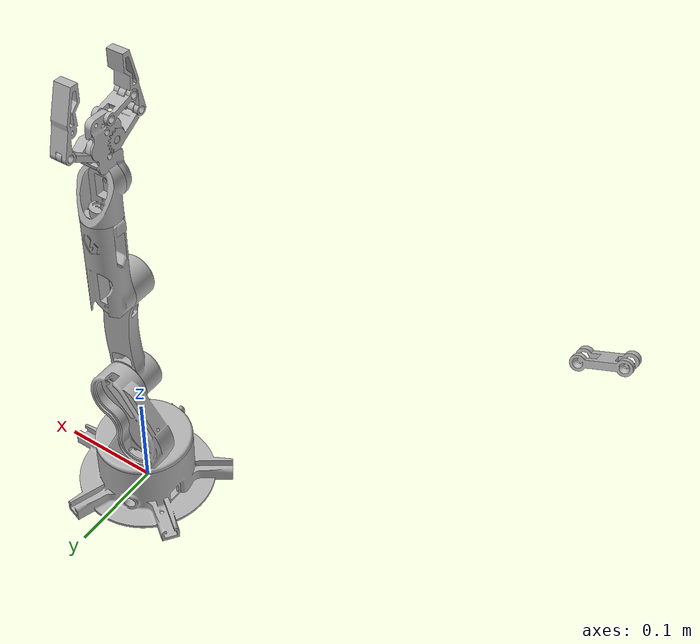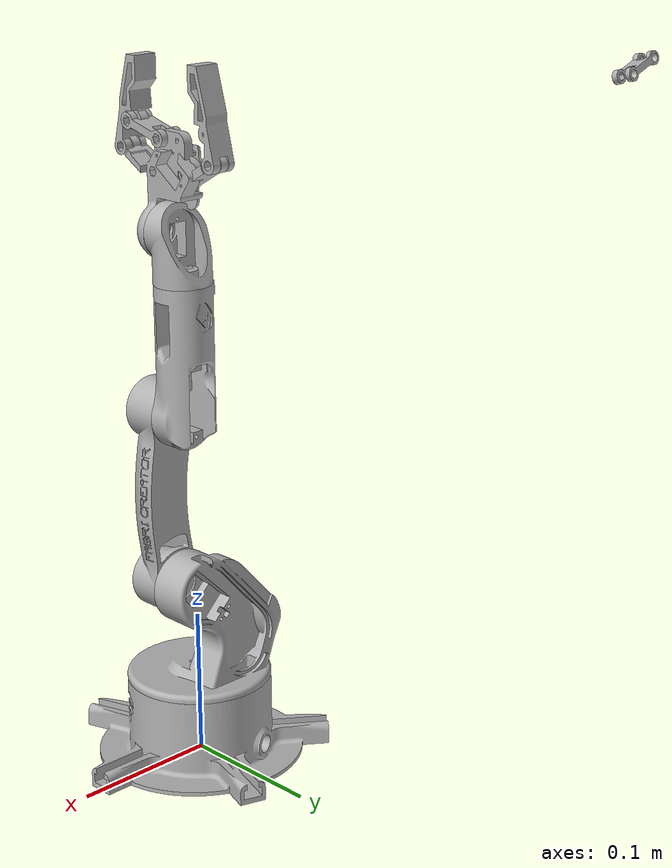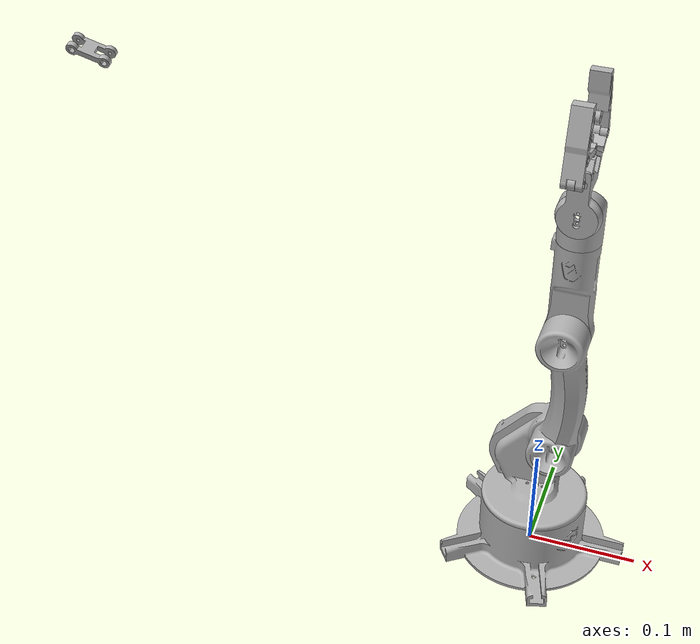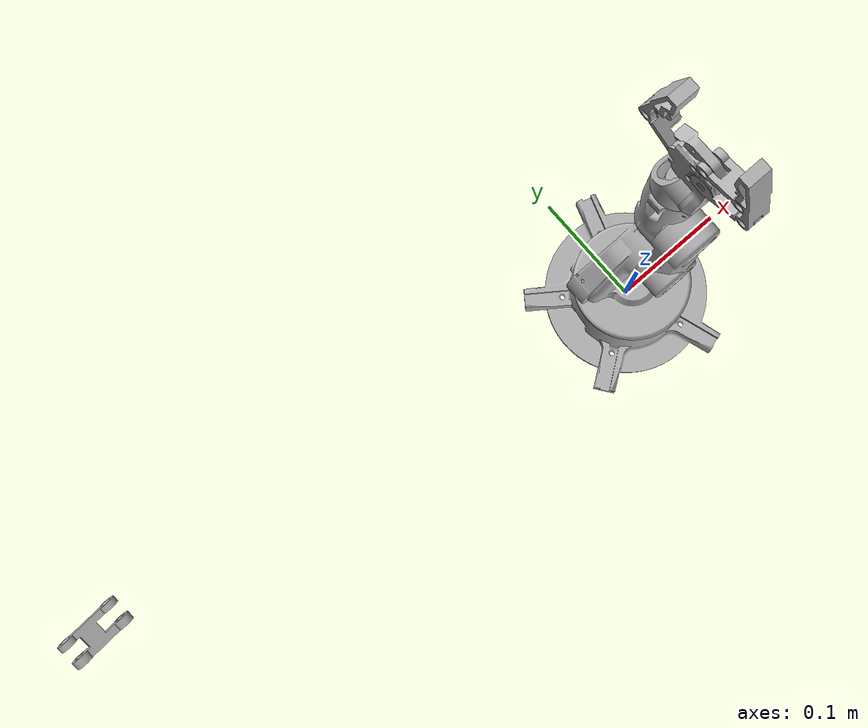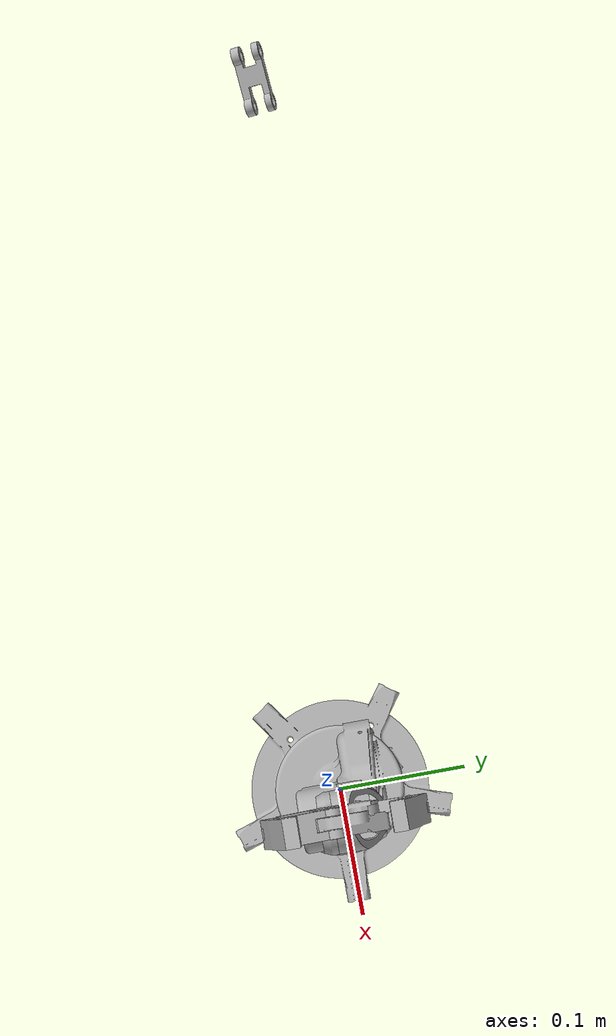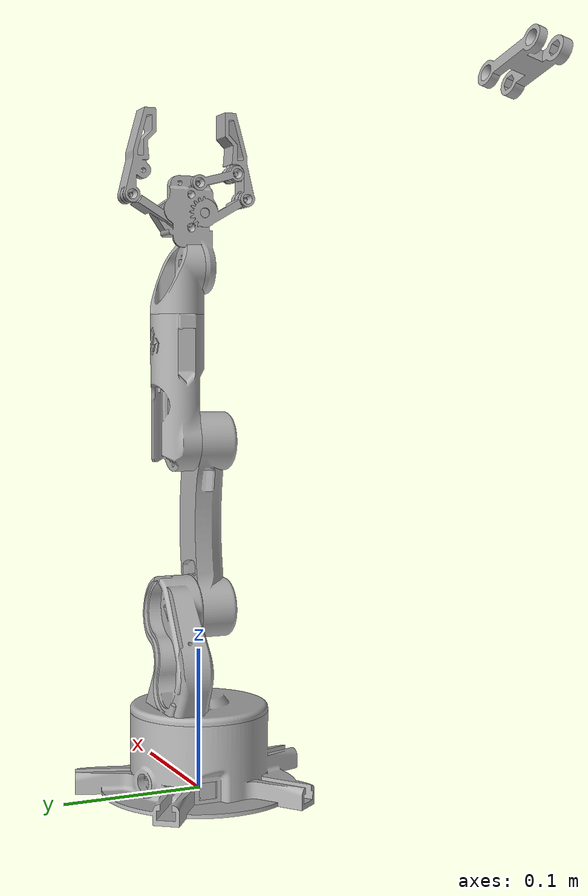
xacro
<?xml version="1.0" encoding="UTF-8"?>
<robot name="cobot" xmlns:xacro="http://www.ros.org/wiki/xacro">

  <xacro:include filename="$(find cobot_description)/urdf/cobot.description.xacro" />
  <xacro:include filename="$(find cobot_description)/urdf/cobot.ros2_control.xacro" />

  <xacro:arg name="simulation" default="false" />
  <xacro:arg name="use_real_hardware" default="false" />

  <xacro:cobot_description simulation="$(arg simulation)" />
  <xacro:cobot_ros2_control use_real_hardware="$(arg use_real_hardware)" />

</robot>

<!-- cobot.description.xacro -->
<robot xmlns:xacro="http://www.ros.org/wiki/xacro">

  <xacro:include filename="$(find cobot_description)/urdf/utils/colors.xacro" />
  <xacro:include filename="$(find cobot_description)/urdf/utils/inertials.xacro" />

  <xacro:macro name="cobot_description" params="simulation:=false">
    <link name="world"/>
    <joint name="world_to_base_link" type="fixed">
      <parent link="world"/>
      <child link="base_link"/>
    </joint>

    <link name="base_link" />
    <joint name="base_link_to_base_bottom" type="fixed">
      <parent link="base_link"/>
      <child link="base_bottom"/>
    </joint>

    <!-- base_bottom -->
    <link name="base_bottom">
      <visual>
        <origin xyz="0 0 0" rpy="0 0 0" />
        <geometry>
          <mesh filename="package://cobot_description/meshes/base_link.stl" scale="0.001 0.001 0.001" />
        </geometry>
        <material name="silver" />
      </visual>

      <inertial>
        <origin xyz="0.0010569805350138673 0.0007297344522584362 0.01829217339489528" rpy="0 0 0" />
        <mass
          value="0.9757252027596308" />
        <inertia
          ixx="0.001614"
          iyy="0.0017"
          izz="0.002741"
          ixy="-1.4e-05"
          iyz="-7e-06"
          ixz="-0.0" />
      </inertial>
    </link>

    <!-- link1 -->
    <link name="link1">
      <visual>
        <origin xyz="0 0 0" rpy="0 0 0" />
        <geometry>
          <mesh filename="package://cobot_description/meshes/link1.stl" scale="0.001 0.001 0.001" />
        </geometry>
        <material name="silver" />
      </visual>

      <inertial>
        <origin xyz="-0.003818008823720768 0.008441513827613 0.03204494242786362" rpy="0 0 0" />
        <mass value="0.85" />
        <inertia
          ixx="0.000968"
          iyy="0.001205"
          izz="0.000724"
          ixy="3.4e-05"
          iyz="-0.000103"
          ixz="-7.7e-05" />
      </inertial>
    </link>

    <!-- link2 -->
    <link name="link2">
      <visual>
        <origin xyz="0 0 0" rpy="0 0 0" />
        <geometry>
          <mesh filename="package://cobot_description/meshes/link2.stl" scale="0.001 0.001 0.001" />
        </geometry>
        <material name="silver" />
      </visual>

      <inertial>
        <origin xyz="0.06020229512696279 -0.002214238815772403 0.011894670876730499" rpy="0 0 0" />
        <mass value="0.65" />
        <inertia
          ixx="0.000127"
          iyy="0.001921"
          izz="0.001969"
          ixy="-2e-06"
          iyz="2e-06"
          ixz="1e-06" />
      </inertial>
    </link>

    <!-- link3 -->
    <link name="link3">
      <visual>
        <origin xyz="0 0 0" rpy="0 0 0" />
        <geometry>
          <mesh filename="package://cobot_description/meshes/link3.stl" scale="0.001 0.001 0.001" />
        </geometry>
        <material name="silver" />
      </visual>

      <inertial>
        <origin xyz="0.0409322245782118 -0.0006937756215695916 -0.008652145666434768" rpy="0 0 0" />
        <mass value="0.4" />
        <inertia
          ixx="8.7e-05"
          iyy="0.000447"
          izz="0.000468"
          ixy="-7e-06"
          iyz="-2e-06"
          ixz="-5e-06" />
      </inertial>
    </link>

    <!-- link4 -->
    <link name="link4">
      <visual>
        <origin xyz="0 0 0" rpy="0 0 0" />
        <geometry>
          <mesh filename="package://cobot_description/meshes/link4.stl" scale="0.001 0.001 0.001" />
        </geometry>
        <material name="silver" />
      </visual>

      <inertial>
        <origin xyz="0.0002076619932401616 -0.005563955264345595 0.02139744743586941" rpy="0 0 0" />
        <mass value="0.17" />
        <inertia
          ixx="4.4e-05"
          iyy="5.8e-05"
          izz="3.2e-05"
          ixy="0.0"
          iyz="4e-06"
          ixz="-0.0" />
      </inertial>
    </link>

    <link name="link5">
      <inertial>
        <origin xyz="0.023252917458090605 0.0009180511930666074 -0.0026770648599710144" rpy="1.5708 0 1.5708" />
        <mass value="0.17" />
        <inertia
          ixx="9.6e-05"
          iyy="8.8e-05"
          izz="2.6e-05"
          ixy="0.0"
          iyz="1.8e-05"
          ixz="-3e-06" />
      </inertial>

      <visual>
        <origin xyz="0 0 0" rpy="0 0 0" />
        <geometry>
          <mesh filename="package://cobot_description/meshes/link5.stl" scale="0.001 0.001 0.001" />
        </geometry>
        <material name="silver"/>
      </visual>
    </link>

    <link name="in_right_grip">
      <visual>
        <origin xyz="0 0 0" rpy="0 0 0" />
        <geometry>
          <mesh filename="package://cobot_description/meshes/in_right_grip.stl" scale="0.001 0.001 0.001" />
        </geometry>
        <material name="silver" />
      </visual>

      <collision>
        <origin xyz="0.0149143 0 0.00349 " rpy="0 0 0" />
        <geometry>
          <box size="0.04 0.01 0.0168"/>
        </geometry>
      </collision>

      <xacro:box_inertial
        mass="0.05"
        size="0.04 0.01 0.0168"
        xyz="0.0149143 0 0.00349"
        rpy="0 0 0" />
    </link>

    <link name="in_left_grip">
      <visual>
        <origin xyz="0 0 0" rpy="0 0 0" />
        <geometry>
          <mesh filename="package://cobot_description/meshes/in_left_grip.stl" scale="0.001 0.001 0.001" />
        </geometry>
        <material name="silver" />
      </visual>

      <collision>
        <origin xyz="0.0149143 0 0.00349 " rpy="0 0 0" />
        <geometry>
          <box size="0.04 0.01 0.0168"/>
        </geometry>
      </collision>

      <xacro:box_inertial
        mass="0.05"
        size="0.04 0.01 0.0168"
        xyz="0.0149143 0 0.00349"
        rpy="0 0 0" />
    </link>

    <link name="out_right_grip">
      <visual>
        <origin xyz="0 0 0" rpy="0 0 0" />
        <geometry>
          <mesh filename="package://cobot_description/meshes/out_right_grip.stl" scale="0.001 0.001 0.001" />
        </geometry>
        <material name="silver" />
      </visual>

      <collision>
        <origin xyz="0.0218 -0.0065 0" rpy="0 0 0" />
        <geometry>
          <box size="0.035 0.0055 0.007"/>
        </geometry>
      </collision>

      <xacro:box_inertial
        mass="0.05"
        size="0.035 0.0055 0.007"
        xyz="0.0218 -0.0065 0"
        rpy="0 0 0" />
    </link>

    <link name="out_left_grip">
      <visual>
        <origin xyz="0 0 0" rpy="0 0 0" />
        <geometry>
          <mesh filename="package://cobot_description/meshes/out_left_grip.stl" scale="0.001 0.001 0.001" />
        </geometry>
        <material name="silver" />
      </visual>

      <collision>
        <origin xyz="0.0218 0.0065 0" rpy="0 0 0" />
        <geometry>
          <box size="0.035 0.0055 0.007"/>
        </geometry>
      </collision>

      <xacro:box_inertial
        mass="0.05"
        size="0.035 0.0055 0.007"
        xyz="0.0218 0.0065 0"
        rpy="0 0 0" />
    </link>

    <link name="right_gripper">
      <visual>
        <origin xyz="0 0 0" rpy="0 0 -0.2618" />
        <geometry>
          <mesh filename="package://cobot_description/meshes/right_gripper.stl" scale="0.001 0.001 0.001" />
        </geometry>
        <material name="silver" />
      </visual>

      <collision>
        <origin xyz="0.04165 0 0" rpy="0 0 -0.2618" />
        <geometry>
          <box size="0.03546 0.0082 0.01684"/>
        </geometry>
      </collision>

      <xacro:box_inertial
        mass="0.05"
        size="0.03546 0.0082 0.01684"
        xyz="0.04165 0 0"
        rpy="0 0 -0.2618" />
    </link>

    <link name="left_gripper">
      <visual>
        <origin xyz="0 0 0" rpy="0 0 0.2618" />
        <geometry>
          <mesh filename="package://cobot_description/meshes/left_gripper.stl" scale="0.001 0.001 0.001" />
        </geometry>
        <material name="silver" />
      </visual>

      <collision>
        <origin xyz="0.04165 0 0" rpy="0 0 0.2618" />
        <geometry>
          <box size="0.03546 0.0082 0.01684"/>
        </geometry>
      </collision>

      <xacro:box_inertial
        mass="0.05"
        size="0.03546 0.0082 0.01684"
        xyz="0.04165 0 0"
        rpy="0 0 0.2618" />
    </link>

    <!-- joint -->

    <joint name="joint_0" type="revolute">
      <origin xyz="0 0 0.05675" rpy="0 0 0" />
      <parent link="base_bottom" />
      <child link="link1" />
      <axis xyz="0 0 1" />
      <limit
        effort="1000.0"
        lower="-${pi/2}"
        upper="${pi/2}"
        velocity="0.5" />
    </joint>

    <joint name="joint_1" type="revolute">
      <origin xyz="0.01392 0 0.070276" rpy="1.5708 -1.5708 0" />
      <parent link="link1" />
      <child link="link2" />
      <axis xyz="0 0 1" />
      <limit
        effort="1000.0"
        lower="-${pi/2}"
        upper="${pi/2}"
        velocity="0.5" />
    </joint>

    <joint name="joint_2" type="revolute">
      <origin xyz="0.12 0 0" rpy="0 0 0" />
      <parent link="link2" />
      <child link="link3" />
      <axis xyz="0 0 -1"/>
      <limit
        effort="1000.0"
        lower="-${pi/2}"
        upper="${pi/2}"
        velocity="0.5" />
    </joint>

    <joint name="joint_3" type="revolute">
      <origin xyz="0.08975 0 -0.010544" rpy="-${pi/2} 0 -${pi/2}" />
      <parent link="link3" />
      <child link="link4" />
      <axis xyz="0 0 1" />
      <limit
        effort="1000.0"
        lower="-${pi/2}"
        upper="${pi/2}"
        velocity="0.5" />
    </joint>

    <joint name="joint_4" type="revolute">
      <origin xyz="0 -0.0142 0.0325" rpy="${pi/2} -${pi/2} 0" />
      <parent link="link4" />
      <child link="link5" />
      <axis xyz="0 0 1" />
      <limit
        effort="1000.0"
        lower="-${pi/2}"
        upper="${pi/2}"
        velocity="0.5" />
    </joint>

    <!-- joint_link5_to_out_left_grip -->
    <joint name="joint_gripper" type="revolute">
      <origin xyz="0.038208 0.00536837 -0.017277" rpy="-${pi/2} 1.047 0"/>
      <parent link="link5" />
      <child link="out_left_grip" />
      <axis xyz="0 0 1" />
      <limit
        effort="1000.0"
        lower="-1.047"
        upper="0.0"
        velocity="0.5" />
    </joint>

    <joint name="joint_link5_to_out_right_grip" type="revolute">
      <origin xyz="0.038322 0.00536837 0.002815" rpy="-${pi/2} -1.047 0"/>
      <parent link="link5" />
      <child link="out_right_grip" />
      <axis xyz="0 0 -1" />
      <xacro:unless value="${simulation}">
        <mimic
          joint="joint_gripper"
          multiplier="1.0"
          offset="0" />
      </xacro:unless>
      <limit
        effort="1000.0"
        lower="-${pi/2}"
        upper="${pi/2}"
        velocity="0.5" />
    </joint>

    <joint name="joint_link5_to_in_left_grip" type="revolute">
      <origin xyz="0.059059 -0.002086 -0.013997" rpy="-${pi/2} 1.3090 0" />
      <parent link="link5" />
      <child link="in_left_grip" />
      <axis xyz="0 0 1"/>
      <xacro:unless value="${simulation}">
        <mimic
          joint="joint_gripper"
          multiplier="1.2"
          offset="0" />
      </xacro:unless>
      <limit
        effort="1000.0"
        lower="-${pi/2}"
        upper="${pi/2}"
        velocity="0.5" />
    </joint>

    <joint name="joint_link5_to_in_right_grip" type="revolute">
      <origin xyz="0.059134 -0.002086 -0.000687" rpy="-${pi/2} -1.3090 0" />
      <parent link="link5" />
      <child link="in_right_grip" />
      <axis xyz="0 0 -1" />
      <xacro:unless value="${simulation}">
        <mimic
          joint="joint_gripper"
          multiplier="1.2"
          offset="0" />
      </xacro:unless>
      <limit
        effort="1000.0"
        lower="-${pi/2}" upper="${pi/2}" velocity="0.5" />
    </joint>

    <joint name="joint_out_left_grip_to_left_gripper" type="revolute">
      <origin xyz="0.0339442 0.00682491 -0.0042874" rpy="0 0 -1.309" />
      <parent link="out_left_grip" />
      <child link="left_gripper" />
      <axis xyz="0 0 -1"/>
      <xacro:unless value="${simulation}">
        <mimic
          joint="joint_gripper"
          multiplier="1.0"
          offset="0" />
      </xacro:unless>
      <limit
        effort="1000.0"
        lower="-${pi/2}"
        upper="${pi/2}"
        velocity="0.5" />
    </joint>

    <joint name="joint_out_right_grip_to_right_gripper" type="revolute">
      <origin xyz="0.0339442 -0.00682491 -0.0030837" rpy="0 0 1.309" />
      <parent link="out_right_grip" />
      <child link="right_gripper" />
      <axis xyz="0 0 1"/>
      <xacro:unless value="${simulation}">
        <mimic
          joint="joint_gripper"
          multiplier="1.0"
          offset="0" />
      </xacro:unless>
      <limit
        effort="1000.0"
        lower="-${pi/2}"
        upper="${pi/2}"
        velocity="0.5" />
    </joint>

    <!-- end effector -->
    <link name="end_effector_link" />
    <joint name="end_effector" type="fixed">
      <origin xyz="0.105 0 -0.0075" rpy="0 0 0" />
      <parent link="link5" />
      <child link="end_effector_link" />
    </joint>
  </xacro:macro>
</robot>

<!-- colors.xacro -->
<robot xmlns:xacro="http://www.ros.org/wiki/xacro">

  <material name="silver">
    <color rgba="0.7 0.7 0.7 1.0" />
  </material>

  <material name="white_translucent">
    <color rgba="0.9 0.9 0.9 1"/>
  </material>

  <material name="black_translucent">
    <color rgba="0.1 0.1 0.1 1.0"/>
  </material>

  <material name="black">
    <color rgba="0.0 0.0 0.0 1.0"/>
  </material>

  <material name="blue">
    <color rgba="0.0 0.0 0.8 1.0"/>
  </material>

  <material name="green">
    <color rgba="0.0 0.8 0.0 1.0"/>
  </material>

  <material name="grey">
    <color rgba="0.2 0.2 0.2 1.0"/>
  </material>

  <material name="orange">
    <color rgba="${255/255} ${108/255} ${10/255} 1.0"/>
  </material>

  <material name="brown">
    <color rgba="${222/255} ${207/255} ${195/255} 1.0"/>
  </material>

  <material name="red">
    <color rgba="0.8 0.0 0.0 1.0"/>
  </material>

  <material name="yellow">
    <color rgba="1.0 1.0 0.0 1.0"/>
  </material>

  <material name="white">
    <color rgba="1.0 1.0 1.0 1.0"/>
  </material>

  <material name="pink">
    <color rgba="1.0 0.75 0.8 1.0"/>
  </material>
</robot>

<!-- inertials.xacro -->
<robot xmlns:xacro="http://www.ros.org/wiki/xacro">

  <!-- BOX -->
  <!-- params: mass, size="x y z", xyz(optional), rpy(optional) -->
  <xacro:macro name="box_inertial" params="mass size xyz:='0 0 0' rpy:='0 0 0'">
    <xacro:property name="x" value="${size.split()[0]}" />
    <xacro:property name="y" value="${size.split()[1]}" />
    <xacro:property name="z" value="${size.split()[2]}" />

    <inertial>
      <origin
        xyz="${xyz}" rpy="${rpy}" />
      <mass value="${mass}" />
      <inertia
        ixx="${mass * (y*y + z*z) / 12.0}"
        iyy="${mass * (x*x + z*z) / 12.0}"
        izz="${mass * (x*x + y*y) / 12.0}"
        ixy="0.0" ixz="0.0" iyz="0.0" />
    </inertial>
  </xacro:macro>

  <!-- SPHERE -->
  <!-- params: mass, radius, xyz(optional), rpy(optional) -->
  <xacro:macro name="sphere_inertial" params="mass radius xyz:='0 0 0' rpy:='0 0 0'">
    <inertial>
      <origin
        xyz="${xyz}" rpy="${rpy}" />
      <mass
        value="${mass}" />
      <inertia
        ixx="${0.4 * mass * radius*radius}"
        iyy="${0.4 * mass * radius*radius}"
        izz="${0.4 * mass * radius*radius}"
        ixy="0.0" ixz="0.0" iyz="0.0" />
    </inertial>
  </xacro:macro>

  <!-- CYLINDER -->
  <!-- params: mass, radius, length, xyz(optional), rpy(optional) -->
  <!-- Asumsi sumbu silinder = Z -->
  <xacro:macro name="cylinder_inertial" params="mass radius length xyz:='0 0 0' rpy:='0 0 0'">
    <inertial>
      <origin
        xyz="${xyz}" rpy="${rpy}" />
      <mass
        value="${mass}" />
      <inertia
        ixx="${mass * (3*radius*radius + length*length) / 12.0}"
        iyy="${mass * (3*radius*radius + length*length) / 12.0}"
        izz="${0.5 * mass * radius*radius}"
        ixy="0.0" ixz="0.0" iyz="0.0" />
    </inertial>
  </xacro:macro>

</robot>
